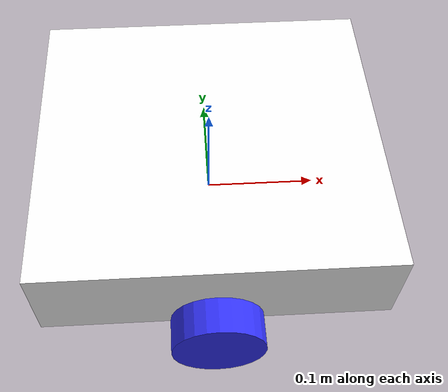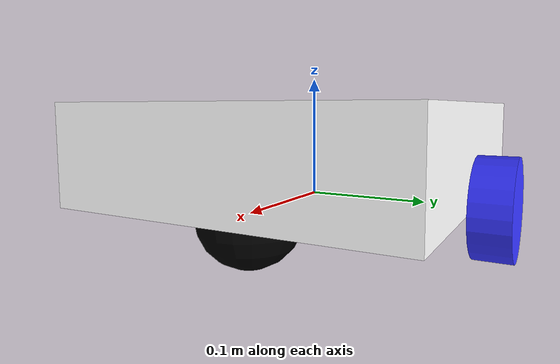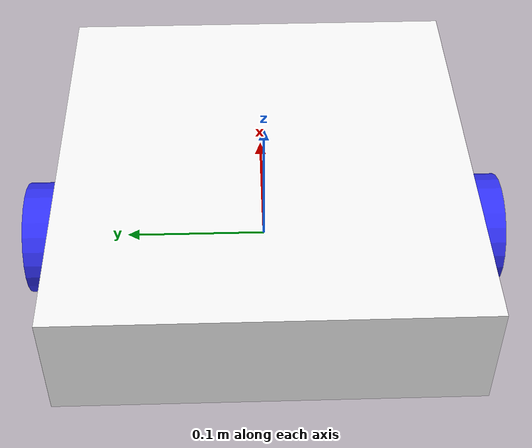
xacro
<?xml version="1.0"?>
<robot xmlns:xacro="http://www.ros.org/wiki/xacro"  name="diff_drive_robot">

    <xacro:include filename="robot_core.xacro"/>
    <xacro:include filename="gazebo_control.xacro"/>
    <!-- Uncommit for ros2_control -->

</robot>

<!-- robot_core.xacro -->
<robot xmlns:xacro="http://www.ros.org/wiki/xacro">

	<xacro:include filename="inertial_macros.xacro"/>

	<!-- Control Parameters -->
	<material name="white">
   		<color rgba="1 1 1 1"/>
  	</material>

  	<material name="orange">
   		<color rgba="1 0.3 0.1 1"/>
  	</material>

	<material name="red">
   		<color rgba="1 0 0 1"/>
  	</material>

	<material name="blue">
   		<color rgba="0.2 0.2 1 1"/>
  	</material>

	<material name="green">
   		<color rgba="0 0.84 0 1"/>
  	</material>

	<material name="black">
   		<color rgba="0 0 0 1"/>
  	</material>

  	<material name="grey">
   		<color rgba="0.5 0.5 0.5 1"/>
  	</material>

	<!-- BASE LINK -->

	<link name="base_link">

	</link>

	<!-- BASE_FOOTPRINT LINK -->

	<joint name="base_footprint_joint" type="fixed">
		<parent link="base_link"/>
		<child link="base_footprint"/>
		<origin xyz="0 0 0" rpy="0 0 0"/>
	</joint>

	<link name="base_footprint">

	</link>

	<!-- CHASSIS LINK -->

	<joint name="chassis_joint" type="fixed">
		<parent link="base_link"/>
		<child link="chassis"/>
		<origin xyz="0 0 0"/>
	</joint>

	<link name="chassis">
		<visual>
			<origin xyz="0 0 0.04"/>
			<geometry>
				<box size="0.3 0.28 0.08"/>
			</geometry>
			<material name="white"/>
		</visual>
		<collision>
			<origin xyz="0 0 0.04"/>
			<geometry>
				<box size="0.3 0.28 0.08"/>
			</geometry>
			<material name="white"/>
		</collision>
		<xacro:inertial_box mass="2" x="0.3" y="0.28" z="0.08">
			<origin xyz="0 0 0.04" rpy="0 0 0"/>
		</xacro:inertial_box>
	</link>

	<gazebo reference="chassis">
		<material>Gazebo/White</material>
	</gazebo>

	<!-- LEFT WHEEL LINK -->

	<joint name="left_wheel_joint" type="continuous">
		<parent link="chassis"/>
		<child link="left_wheel"/>
		<origin xyz="0 0.155 0" rpy="-${pi/2} 0 0"/>
		<axis xyz="0 0 1"/>
        <limit effort="100" velocity="10.0"/>
        <dynamics damping="0.1" friction="0.1"/>
	</joint>

	<link name="left_wheel">
		<visual>
			<geometry>
				<cylinder radius="0.04" length="0.03"/>
			</geometry>
			<material name="blue"/>
		</visual>
		<collision>
			<geometry>
				<cylinder radius="0.04" length="0.03"/>
			</geometry>
			<material name="blue"/>
		</collision>
		<xacro:inertial_cylinder mass="0.5" radius="0.04" length="0.03">
			<origin xyz="0 0 0" rpy="0 0 0"/>
		</xacro:inertial_cylinder>
	</link>

	<gazebo reference="left_wheel">
		<material>Gazebo/Blue</material>
	</gazebo>

	<!-- RIGHT WHEEL LINK -->

	<joint name="right_wheel_joint" type="continuous">
		<parent link="chassis"/>
		<child link="right_wheel"/>
		<origin xyz="0 -0.155 0" rpy="${pi/2} 0 0"/>
		<axis xyz="0 0 -1"/>
        <limit effort="100" velocity="10.0"/>
        <dynamics damping="0.1" friction="0.1"/>
	</joint>

	<link name="right_wheel">
		<visual>
			<geometry>
				<cylinder radius="0.04" length="0.03"/>
			</geometry>
			<material name="blue"/>
		</visual>
		<collision>
			<geometry>
				<cylinder radius="0.04" length="0.03"/>
			</geometry>
			<material name="blue"/>
		</collision>
		<xacro:inertial_cylinder mass="0.5" radius="0.04" length="0.03">
			<origin xyz="0 0 0" rpy="0 0 0"/>
		</xacro:inertial_cylinder>
	</link>

	<gazebo reference="right_wheel">
		<material>Gazebo/Blue</material>
	</gazebo>

	<!-- CASTER WHEEL LINK BACK -->

	<joint name="caster_wheel_joint_back" type="fixed">
		<parent link="chassis"/>
		<child link="caster_wheel_back"/>
		<origin xyz="-0.1 0 0"/>
	</joint>

	<link name="caster_wheel_back">
		<visual>
			<geometry>
				<sphere radius="0.04"/>
			</geometry>
			<material name="black"/>
		</visual>
		<collision>
			<geometry>
				<sphere radius="0.04"/>
			</geometry>
			<material name="black"/>
		</collision>
		<xacro:inertial_sphere mass="0.1" radius="0.04">
			<origin xyz="0 0 0" rpy="0 0 0"/>
		</xacro:inertial_sphere>
	</link>

	<gazebo reference="caster_wheel_back">
		<material>Gazebo/Black</material>
		<mu1 value="0.005"/>
		<mu2 value="0.005"/>
	</gazebo>

	<!-- CASTER WHEEL LINK 2 -->

	<joint name="caster_wheel_joint_front" type="fixed">
		<parent link="chassis"/>
		<child link="caster_wheel_front"/>
		<origin xyz="0.1 0 0"/>
	</joint>

	<link name="caster_wheel_front">
		<visual>
			<geometry>
				<sphere radius="0.04"/>
			</geometry>
			<material name="black"/>
		</visual>
		<collision>
			<geometry>
				<sphere radius="0.04"/>
			</geometry>
			<material name="black"/>
		</collision>
		<xacro:inertial_sphere mass="0.1" radius="0.04">
			<origin xyz="0 0 0" rpy="0 0 0"/>
		</xacro:inertial_sphere>
	</link>

	<gazebo reference="caster_wheel_front">
		<material>Gazebo/Black</material>
		<mu1 value="0.005"/>
		<mu2 value="0.005"/>
	</gazebo>

</robot>

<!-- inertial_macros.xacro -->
<robot xmlns:xacro="http://www.ros.org/wiki/xacro">

    <!-- Specify some standard inertial calculations https://en.wikipedia.org/wiki/List_of_moments_of_inertia -->
    <!-- These make use of xacro's mathematical functionality -->

    <xacro:macro name="inertial_sphere" params="mass radius *origin">
        <inertial>
            <xacro:insert_block name="origin"/>
            <mass value="${mass}" />
            <inertia ixx="${(2/5) * mass * (radius*radius)}" ixy="0.0" ixz="0.0"
                    iyy="${(2/5) * mass * (radius*radius)}" iyz="0.0"
                    izz="${(2/5) * mass * (radius*radius)}" />
        </inertial>
    </xacro:macro>

    <xacro:macro name="inertial_box" params="mass x y z *origin">
        <inertial>
            <xacro:insert_block name="origin"/>
            <mass value="${mass}" />
            <inertia ixx="${(1/12) * mass * (y*y+z*z)}" ixy="0.0" ixz="0.0"
                    iyy="${(1/12) * mass * (x*x+z*z)}" iyz="0.0"
                    izz="${(1/12) * mass * (x*x+y*y)}" />
        </inertial>
    </xacro:macro>

    <xacro:macro name="inertial_cylinder" params="mass length radius *origin">
        <inertial>
            <xacro:insert_block name="origin"/>
            <mass value="${mass}" />
            <inertia ixx="${(1/12) * mass * (3*radius*radius + length*length)}" ixy="0.0" ixz="0.0"
                    iyy="${(1/12) * mass * (3*radius*radius + length*length)}" iyz="0.0"
                    izz="${(1/2) * mass * (radius*radius)}" />
        </inertial>
    </xacro:macro>

</robot>
